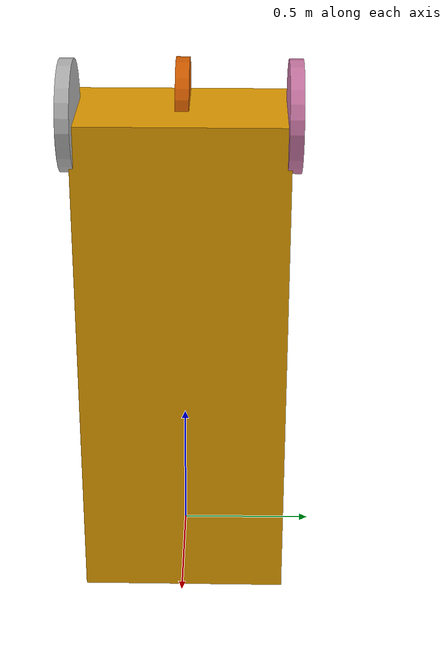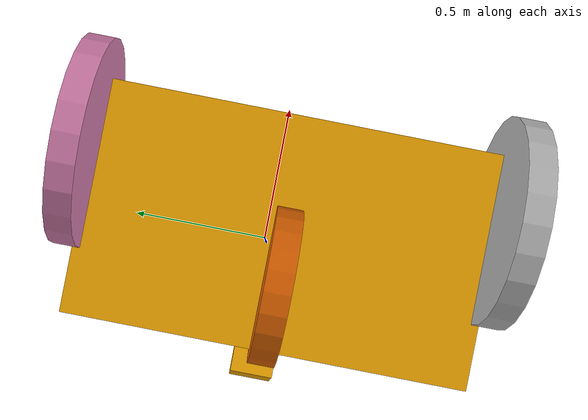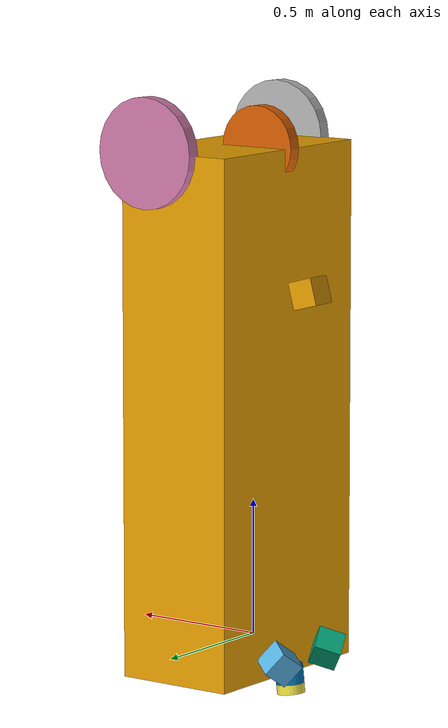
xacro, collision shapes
<?xml version="1.0"?>
<robot xmlns:xacro="http://www.ros.org/wiki/xacro" name="navvis">

    <xacro:include filename="$(find navvis_description)/urdf/navvis.xacro"/>

    <link name="base_link"/>
    <joint name="base_link_to_base_joint" type="fixed">
        <parent link="base_link"/>
        <child link="base"/>
        <origin xyz="0.07 0.0 1.792" rpy="0.0 3.1415 0.0"/>
    </joint>

    <joint name="base_link_to_imu_joint" type="fixed">
        <parent link="base_link"/>
        <child link="imu"/>
        <origin xyz="0.0 0.0 0.0" rpy="3.1405788 0.0034281 3.1382064"/>
    </joint>

    <link name="imu">
        <visual>
            <geometry>
                <sphere radius="0.1"/>
            </geometry>
        </visual>
        <collision>
            <geometry>
                <sphere radius="0.1"/>
            </geometry>
        </collision>
    </link>
</robot>

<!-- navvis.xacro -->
<robot xmlns:xacro="http://www.ros.org/wiki/xacro" name="navvis">
    <xacro:include filename="$(find gazebo_plugins)/test/multi_robot_scenario/xacro/laser/hokuyo.xacro"/>
    <xacro:include filename="$(find velodyne_description)/urdf/VLP-16.urdf.xacro"/>

    <link name="base">
        <visual>
            <origin xyz="0.0 0 0.96" rpy="0.0 0.0 0.0"/>
            <geometry>
                <box size="0.45 0.78 1.92" />
            </geometry>
        </visual>
        <collision>
            <origin xyz="0.0 0 0.96" rpy="0.0 0.0 0.0"/>
            <geometry>
                <box size="0.45 0.78 1.92" />
            </geometry>
        </collision>
    </link>

    <link name="laser_vert_bottom">
        <visual>
            <geometry>
                <box size="0.062 0.062 0.087" />
            </geometry>
        </visual>
        <collision>
            <geometry>
                <box size="0.062 0.062 0.087" />
            </geometry>
        </collision>
    </link>
    <joint name="base_laser_vert_bottom_joint" type="fixed">
        <parent link="base" />
        <child link="laser_vert_bottom" />
        <origin xyz="0.3158 -0.0021 0.5100" rpy="3.1355 -1.3045 0.0025" />
    </joint>

    <link name="laser_vert_top_right">
        <visual>
            <geometry>
                <box size="0.062 0.062 0.087" />
            </geometry>
        </visual>
        <collision>
            <geometry>
                <box size="0.062 0.062 0.087" />
            </geometry>
        </collision>
    </link>
    <joint name="base_laser_vert_top_right_joint" type="fixed">
        <parent link="base" />
        <child link="laser_vert_top_right" />
        <origin xyz="0.2978 -0.1450 1.8451" rpy="-1.1760 0.6313 -1.9377" />
    </joint>

    <link name="laser_vert_top_left">
        <visual>
            <geometry>
                <box size="0.062 0.062 0.087" />
            </geometry>
        </visual>
        <collision>
            <geometry>
                <box size="0.062 0.062 0.087" />
            </geometry>
        </collision>
    </link>
    <joint name="base_laser_vert_top_left_joint" type="fixed">
        <parent link="base" />
        <child link="laser_vert_top_left" />
        <origin xyz="0.2997 0.1531 1.8443" rpy="1.1780 0.6198 1.9560" />
    </joint>

    <link name="laser_horiz">
        <visual>
            <geometry>
                <cylinder radius="0.052" length="0.072"/>
            </geometry>
        </visual>
        <collision>
            <geometry>
                <cylinder radius="0.052" length="0.072"/>
            </geometry>
        </collision>
    </link>
    <joint name="base_laser_vert_horiz_joint" type="fixed">
        <parent link="base" />
        <child link="laser_horiz" />
        <origin xyz="0.2325 0.0001 1.9201" rpy="-0.0012 0.1146 -0.0015" />
    </joint>

    <link name="wheel_center">
        <visual>
            <geometry>
                <cylinder radius="0.15" length="0.05"/>
            </geometry>
        </visual>
        <collision>
            <geometry>
                <cylinder radius="0.15" length="0.05"/>
            </geometry>
        </collision>
    </link>
    <joint name="base_wheel_center_joint" type="continuous">
        <parent link="base" />
        <child link="wheel_center" />
        <limit velocity="1000" effort="1000"/>
        <axis xyz="0 0 1"/>
        <origin xyz="0.10 0.0 0.0" rpy="-1.57 0.0 0.0" />
    </joint>

    <xacro:macro name="xacro_name" params="side reflect">
        <link name="wheel_${side}">
            <visual>
                <geometry>
                    <cylinder radius="0.2" length="0.05"/>
                </geometry>
            </visual>
            <collision>
                <geometry>
                    <cylinder radius="0.2" length="0.05"/>
                </geometry>
            </collision>
        </link>
        <joint name="base_wheel_${side}_joint" type="continuous">
            <parent link="base" />
            <child link="wheel_${side}" />
            <limit velocity="1000" effort="1000"/>
            <axis xyz="0 0 1"/>
            <origin xyz="-0.10 ${reflect * 0.4} 0.0" rpy="-1.57 0.0 0.0" />
        </joint>
    </xacro:macro>

    <xacro:xacro_name side="left" reflect="1"/>
    <xacro:xacro_name side="right" reflect="-1"/>

    <xacro:laser name="laser_vert_bottom_hokuyo" parent="base" xyz="0.3167894464801903 -0.002068548615034871 0.5099999434059285"
    rpy="3.1354753 -1.3045001 0.0024658" meshes="package://gazebo_plugins/test/multi_robot_scenario/meshes/laser"/>
    <xacro:laser name="laser_vert_top_left_hokuyo" parent="base" xyz="0.2997 0.1531 1.8443" rpy="1.1780 0.6198 1.9560" meshes="package://gazebo_plugins/test/multi_robot_scenario/meshes/laser"/>
    <xacro:laser name="laser_vert_bottom_top_right" parent="base" xyz="0.2978 -0.1450 1.8451" rpy="-1.1760 0.6313 -1.9377" meshes="package://gazebo_plugins/test/multi_robot_scenario/meshes/laser"/>

    <xacro:VLP-16 parent="base" name="laser_horiz_V" topic="laser_horizV/packets" hz="10" samples="440" gpu="false">
        <origin xyz="0.2325416305773505 -0.0001380069427607134 1.920122926231907" rpy="-0.0012068 0.114646 -0.0015308"/>
    </xacro:VLP-16>
</robot>

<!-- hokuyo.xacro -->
<robot xmlns:xacro="http://www.ros.org/wiki/xacro">

<!-- Front Laser -->
<xacro:macro name="laser" params="name parent xyz rpy meshes" >

  <joint name="${parent}_${name}_joint" type="fixed">
      <axis xyz="0 0 1" />
      <origin xyz="${xyz}" rpy="${rpy}"/>
      <parent link="${parent}"/>
      <child link="${name}"/>
    </joint>

    <link name="${name}">
      <collision>
        <origin xyz="0 0 0" rpy="0 0 0"/>
        <geometry>
          <box size="0.1 0.1 0.1"/>
        </geometry>
      </collision>
      <visual>
        <origin xyz="0 0 0" rpy="0 0 0"/>
        <geometry>
          <mesh filename="${meshes}/hokuyo.dae"/>
        </geometry>
      </visual>
      <inertial>
        <mass value="1e-5" />
        <origin xyz="0 0 0" rpy="0 0 0"/>
        <inertia ixx="1e-6" ixy="0" ixz="0" iyy="1e-6" iyz="0" izz="1e-6" />
      </inertial>
    </link>

    <gazebo reference="${name}">
        <sensor name="laser" type="ray">
        <pose>0 0 0 0 0 0</pose>
          <ray>
            <scan>
              <horizontal>
                <!-- The URG-04LX-UG01  has  683 steps with 0.35139 Degree resolution -->
                <resolution>1</resolution>
                <max_angle>2.0944</max_angle> <!-- 120 Degree -->
                <min_angle>-2.0944</min_angle> <!-- -120 Degree -->
                <samples>683</samples>
              </horizontal>
            </scan>
            <range>
              <min>0.08</min>
              <max>5</max>
              <resolution>0.01</resolution>
            </range>
          </ray>

          <plugin name="laser" filename="libgazebo_ros_laser.so" >
            <robotNamespace></robotNamespace>
            <topicName>${name}/scan</topicName>
            <frameName>${name}</frameName>
          </plugin>

          <always_on>1</always_on>
          <update_rate>30</update_rate>
          <visualize>true</visualize>
        </sensor>
    </gazebo>
</xacro:macro>

</robot>

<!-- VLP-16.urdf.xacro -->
<robot xmlns:xacro="http://www.ros.org/wiki/xacro" name="VLP-16">
  <xacro:property name="M_PI" value="3.1415926535897931" />
  <xacro:macro name="VLP-16" params="*origin is_sim:=true parent:=base_link name:=velodyne tf_prefix:='' topic:=/velodyne_points organize_cloud:=false hz:=10 lasers:=16 samples:=1875 collision_range:=0.3 min_range:=0.0 max_range:=100.0 noise:=0.008 min_angle:=-${M_PI} max_angle:=${M_PI} gpu:=false">

    <joint name="${name}_base_mount_joint" type="fixed">
      <xacro:insert_block name="origin" />
      <parent link="${parent}"/>
      <child link="${name}_base_link"/>
    </joint>

    <link name="${name}_base_link">
      <inertial>
        <mass value="0.83"/>
        <origin xyz="0 0 0.03585"/>
        <inertia ixx="${(0.83 * (3.0*0.0516*0.0516 + 0.0717*0.0717)) / 12.0}" ixy="0" ixz="0"
          iyy="${(0.83 * (3.0*0.0516*0.0516 + 0.0717*0.0717)) / 12.0}" iyz="0"
          izz="${0.5 * 0.83 * (0.0516*0.0516)}"/>
      </inertial>
      <visual>
        <geometry>
          <mesh filename="package://velodyne_description/meshes/VLP16_base_1.dae" />
        </geometry>
      </visual>
      <visual>
        <geometry>
          <mesh filename="package://velodyne_description/meshes/VLP16_base_2.dae" />
        </geometry>
      </visual>
      <collision>
        <origin rpy="0 0 0" xyz="0 0 0.03585"/>
        <geometry>
          <cylinder radius="0.0516" length="0.0717"/>
        </geometry>
      </collision>
    </link>

    <joint name="${name}_base_scan_joint" type="fixed" >
      <origin xyz="0 0 0.0377" rpy="0 0 0" />
      <parent link="${name}_base_link" />
      <child link="${name}"/>
    </joint>

    <link name="${name}">
      <inertial>
        <mass value="0.01"/>
        <origin xyz="0 0 0"/>
        <inertia ixx="1e-7" ixy="0" ixz="0" iyy="1e-7" iyz="0" izz="1e-7"/>
      </inertial>
      <visual>
        <origin xyz="0 0 -0.0377" />
        <geometry>
          <mesh filename="package://velodyne_description/meshes/VLP16_scan.dae" />
        </geometry>
      </visual>
      <collision>
        <geometry>
          <sphere radius="0"/>
        </geometry>
      </collision>
    </link>

    <!-- Gazebo requires the velodyne_gazebo_plugins package -->
    <xacro:if value="${is_sim}">
        <gazebo reference="${name}">
            <xacro:if value="${gpu}">
                <sensor type="gpu_ray" name="${name}-VLP16">
                <pose>0 0 0 0 0 0</pose>
                <visualize>false</visualize>
                <update_rate>${hz}</update_rate>
                <ray>
                    <scan>
                    <horizontal>
                        <samples>${samples}</samples>
                        <resolution>1</resolution>
                        <min_angle>${min_angle}</min_angle>
                        <max_angle>${max_angle}</max_angle>
                    </horizontal>
                    <vertical>
                        <samples>${lasers}</samples>
                        <resolution>1</resolution>
                        <min_angle>-${15.0*M_PI/180.0}</min_angle>
                        <max_angle> ${15.0*M_PI/180.0}</max_angle>
                    </vertical>
                    </scan>
                    <range>
                    <min>${collision_range}</min>
                    <max>${max_range+1}</max>
                    <resolution>0.001</resolution>
                    </range>
                    <noise>
                    <type>gaussian</type>
                    <mean>0.0</mean>
                    <stddev>0.0</stddev>
                    </noise>
                </ray>
                <plugin name="gazebo_ros_laser_controller" filename="libgazebo_ros_velodyne_laser.so">
                    <ros>
                    <namespace>/${name}</namespace>
                    <remapping>~/out:=${topic}</remapping>
                    </ros>
                    <tf_prefix>${tf_prefix}</tf_prefix>
                    <frame_name>${name}</frame_name>
                    <organize_cloud>${organize_cloud}</organize_cloud>
                    <min_range>${min_range}</min_range>
                    <max_range>${max_range}</max_range>
                    <gaussian_noise>${noise}</gaussian_noise>
                </plugin>
                </sensor>
            </xacro:if>
            <xacro:unless value="${gpu}">
                <sensor type="ray" name="${name}-VLP16">
                <pose>0 0 0 0 0 0</pose>
                <visualize>false</visualize>
                <update_rate>${hz}</update_rate>
                <ray>
                    <scan>
                    <horizontal>
                        <samples>${samples}</samples>
                        <resolution>1</resolution>
                        <min_angle>${min_angle}</min_angle>
                        <max_angle>${max_angle}</max_angle>
                    </horizontal>
                    <vertical>
                        <samples>${lasers}</samples>
                        <resolution>1</resolution>
                        <min_angle>-${15.0*M_PI/180.0}</min_angle>
                        <max_angle> ${15.0*M_PI/180.0}</max_angle>
                    </vertical>
                    </scan>
                    <range>
                    <min>${collision_range}</min>
                    <max>${max_range+1}</max>
                    <resolution>0.001</resolution>
                    </range>
                    <noise>
                    <type>gaussian</type>
                    <mean>0.0</mean>
                    <stddev>0.0</stddev>
                    </noise>
                </ray>
                <plugin name="gazebo_ros_laser_controller" filename="libgazebo_ros_velodyne_laser.so">
                    <ros>
                    <namespace>/${name}</namespace>
                    <remapping>~/out:=${topic}</remapping>
                    </ros>
                    <tf_prefix>${tf_prefix}</tf_prefix>
                    <frame_name>${name}</frame_name>
                    <organize_cloud>${organize_cloud}</organize_cloud>
                    <min_range>${min_range}</min_range>
                    <max_range>${max_range}</max_range>
                    <gaussian_noise>${noise}</gaussian_noise>
                </plugin>
                </sensor>
            </xacro:unless>
        </gazebo>
    </xacro:if>

  </xacro:macro>
</robot>
